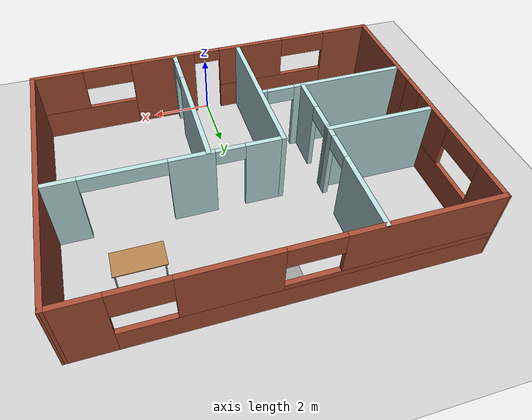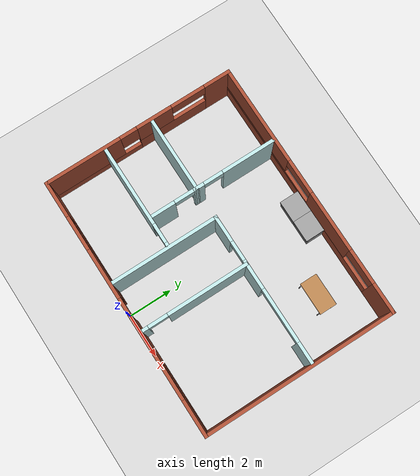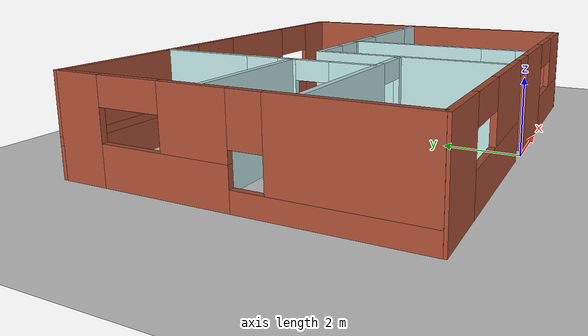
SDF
<sdf version="1.6">
 <world name="default">
  <model name="ground_plane">
   <static>1</static>
   <link name="link">
    <collision name="collision">
     <geometry><plane><normal>0 0 1</normal><size>100 100</size></plane></geometry>
     <surface><friction><ode><mu>100</mu><mu2>50</mu2></ode></friction></surface>
    </collision>
    <visual name="visual">
     <cast_shadows>0</cast_shadows>
     <geometry><plane><normal>0 0 1</normal><size>100 100</size></plane></geometry>
     <material>
      <script><uri>file://media/materials/scripts/gazebo.material</uri><name>Gazebo/Grey</name></script>
     </material>
    </visual>
   </link>
  </model>
  <model name="myhouse">
   <pose>-0.11281 4.46423 0 0 -0 0</pose>
   <link name="Wall_116">
    <pose>1.19186 -1.85654 0 0 0 -1.5708</pose>
    <visual name="Wall_116_Visual_0">
     <pose>-0.621483 0 1.25 0 -0 0</pose>
     <geometry><box><size>3.75703 0.15 2.5</size></box></geometry>
     <material>
      <script><uri>file://media/materials/scripts/gazebo.material</uri><name>Gazebo/Grey</name></script>
      <ambient>0.721569 0.866667 0.866667 1</ambient>
     </material>
     <meta><layer>0</layer></meta>
    </visual>
    <collision name="Wall_116_Collision_0">
     <geometry><box><size>3.75703 0.15 2.5</size></box></geometry>
     <pose>-0.621483 0 1.25 0 -0 0</pose>
    </collision>
    <visual name="Wall_116_Visual_1">
     <pose>2.32852 0 1.25 0 -0 0</pose>
     <geometry><box><size>0.342966 0.15 2.5</size></box></geometry>
     <material>
      <script><uri>file://media/materials/scripts/gazebo.material</uri><name>Gazebo/Grey</name></script>
      <ambient>0.721569 0.866667 0.866667 1</ambient>
     </material>
     <meta><layer>0</layer></meta>
    </visual>
    <collision name="Wall_116_Collision_1">
     <geometry><box><size>0.342966 0.15 2.5</size></box></geometry>
     <pose>2.32852 0 1.25 0 -0 0</pose>
    </collision>
    <visual name="Wall_116_Visual_2">
     <pose>1.70703 0 2.25 0 -0 0</pose>
     <geometry><box><size>0.9 0.15 0.5</size></box></geometry>
     <material>
      <script><uri>file://media/materials/scripts/gazebo.material</uri><name>Gazebo/Grey</name></script>
      <ambient>0.721569 0.866667 0.866667 1</ambient>
     </material>
     <meta><layer>0</layer></meta>
    </visual>
    <collision name="Wall_116_Collision_2">
     <geometry><box><size>0.9 0.15 0.5</size></box></geometry>
     <pose>1.70703 0 2.25 0 -0 0</pose>
    </collision>
   </link>
   <link name="Wall_124">
    <pose>0 -4.37502 0 0 -0 0</pose>
    <visual name="Wall_124_Visual_0">
     <pose>-5.15314 0 1.25 0 -0 0</pose>
     <geometry><box><size>1.69372 0.15 2.5</size></box></geometry>
     <material>
      <script><uri>file://media/materials/scripts/gazebo.material</uri><name>Gazebo/Bricks</name></script>
      <ambient>1 1 1 1</ambient>
     </material>
     <meta><layer>0</layer></meta>
    </visual>
    <collision name="Wall_124_Collision_0">
     <geometry><box><size>1.69372 0.15 2.5</size></box></geometry>
     <pose>-5.15314 0 1.25 0 -0 0</pose>
    </collision>
    <visual name="Wall_124_Visual_1">
     <pose>1.60947 0 1.25 0 -0 0</pose>
     <geometry><box><size>2.19554 0.15 2.5</size></box></geometry>
     <material>
      <script><uri>file://media/materials/scripts/gazebo.material</uri><name>Gazebo/Bricks</name></script>
      <ambient>1 1 1 1</ambient>
     </material>
     <meta><layer>0</layer></meta>
    </visual>
    <collision name="Wall_124_Collision_1">
     <geometry><box><size>2.19554 0.15 2.5</size></box></geometry>
     <pose>1.60947 0 1.25 0 -0 0</pose>
    </collision>
    <visual name="Wall_124_Visual_2">
     <pose>-2.34729 0 0.5 0 -0 0</pose>
     <geometry><box><size>3.91797 0.15 1</size></box></geometry>
     <material>
      <script><uri>file://media/materials/scripts/gazebo.material</uri><name>Gazebo/Bricks</name></script>
      <ambient>1 1 1 1</ambient>
     </material>
     <meta><layer>0</layer></meta>
    </visual>
    <collision name="Wall_124_Collision_2">
     <geometry><box><size>3.91797 0.15 1</size></box></geometry>
     <pose>-2.34729 0 0.5 0 -0 0</pose>
    </collision>
    <visual name="Wall_124_Visual_3">
     <pose>4.35362 0 0.5 0 -0 0</pose>
     <geometry><box><size>3.29276 0.15 1</size></box></geometry>
     <material>
      <script><uri>file://media/materials/scripts/gazebo.material</uri><name>Gazebo/Bricks</name></script>
      <ambient>1 1 1 1</ambient>
     </material>
     <meta><layer>0</layer></meta>
    </visual>
    <collision name="Wall_124_Collision_3">
     <geometry><box><size>3.29276 0.15 1</size></box></geometry>
     <pose>4.35362 0 0.5 0 -0 0</pose>
    </collision>
    <visual name="Wall_124_Visual_4">
     <pose>-1.54729 0 1.75 0 -0 0</pose>
     <geometry><box><size>2.31797 0.15 1.5</size></box></geometry>
     <material>
      <script><uri>file://media/materials/scripts/gazebo.material</uri><name>Gazebo/Bricks</name></script>
      <ambient>1 1 1 1</ambient>
     </material>
     <meta><layer>0</layer></meta>
    </visual>
    <collision name="Wall_124_Collision_4">
     <geometry><box><size>2.31797 0.15 1.5</size></box></geometry>
     <pose>-1.54729 0 1.75 0 -0 0</pose>
    </collision>
    <visual name="Wall_124_Visual_5">
     <pose>-1.54729 0 1.75 0 -0 0</pose>
     <geometry><box><size>2.31797 0.15 1.5</size></box></geometry>
     <material>
      <script><uri>file://media/materials/scripts/gazebo.material</uri><name>Gazebo/Bricks</name></script>
      <ambient>1 1 1 1</ambient>
     </material>
     <meta><layer>0</layer></meta>
    </visual>
    <collision name="Wall_124_Collision_5">
     <geometry><box><size>2.31797 0.15 1.5</size></box></geometry>
     <pose>-1.54729 0 1.75 0 -0 0</pose>
    </collision>
    <visual name="Wall_124_Visual_6">
     <pose>5.15362 0 1.75 0 -0 0</pose>
     <geometry><box><size>1.69276 0.15 1.5</size></box></geometry>
     <material>
      <script><uri>file://media/materials/scripts/gazebo.material</uri><name>Gazebo/Bricks</name></script>
      <ambient>1 1 1 1</ambient>
     </material>
     <meta><layer>0</layer></meta>
    </visual>
    <collision name="Wall_124_Collision_6">
     <geometry><box><size>1.69276 0.15 1.5</size></box></geometry>
     <pose>5.15362 0 1.75 0 -0 0</pose>
    </collision>
    <visual name="Wall_124_Visual_7">
     <pose>-3.50628 0 2.15 0 -0 0</pose>
     <geometry><box><size>1.6 0.15 0.7</size></box></geometry>
     <material>
      <script><uri>file://media/materials/scripts/gazebo.material</uri><name>Gazebo/Bricks</name></script>
      <ambient>1 1 1 1</ambient>
     </material>
     <meta><layer>0</layer></meta>
    </visual>
    <collision name="Wall_124_Collision_7">
     <geometry><box><size>1.6 0.15 0.7</size></box></geometry>
     <pose>-3.50628 0 2.15 0 -0 0</pose>
    </collision>
    <visual name="Wall_124_Visual_8">
     <pose>3.50724 0 2.15 0 -0 0</pose>
     <geometry><box><size>1.6 0.15 0.7</size></box></geometry>
     <material>
      <script><uri>file://media/materials/scripts/gazebo.material</uri><name>Gazebo/Bricks</name></script>
      <ambient>1 1 1 1</ambient>
     </material>
     <meta><layer>0</layer></meta>
    </visual>
    <collision name="Wall_124_Collision_8">
     <geometry><box><size>1.6 0.15 0.7</size></box></geometry>
     <pose>3.50724 0 2.15 0 -0 0</pose>
    </collision>
    <visual name="Wall_124_Visual_9">
     <pose>0.061697 0 2.3 0 -0 0</pose>
     <geometry><box><size>0.9 0.15 0.4</size></box></geometry>
     <material>
      <script><uri>file://media/materials/scripts/gazebo.material</uri><name>Gazebo/Bricks</name></script>
      <ambient>1 1 1 1</ambient>
     </material>
     <meta><layer>0</layer></meta>
    </visual>
    <collision name="Wall_124_Collision_9">
     <geometry><box><size>0.9 0.15 0.4</size></box></geometry>
     <pose>0.061697 0 2.3 0 -0 0</pose>
    </collision>
    <visual name="Wall_124_Visual_10">
     <pose>0.061697 0 2.3 0 -0 0</pose>
     <geometry><box><size>0.9 0.15 0.4</size></box></geometry>
     <material>
      <script><uri>file://media/materials/scripts/gazebo.material</uri><name>Gazebo/Bricks</name></script>
      <ambient>1 1 1 1</ambient>
     </material>
     <meta><layer>0</layer></meta>
    </visual>
    <collision name="Wall_124_Collision_10">
     <geometry><box><size>0.9 0.15 0.4</size></box></geometry>
     <pose>0.061697 0 2.3 0 -0 0</pose>
    </collision>
   </link>
   <link name="Wall_125">
    <collision name="Wall_125_Collision">
     <geometry><box><size>8.9 0.15 2.5</size></box></geometry>
     <pose>0 0 1.25 0 -0 0</pose>
    </collision>
    <visual name="Wall_125_Visual">
     <pose>0 0 1.25 0 -0 0</pose>
     <geometry><box><size>8.9 0.15 2.5</size></box></geometry>
     <material>
      <script><uri>file://media/materials/scripts/gazebo.material</uri><name>Gazebo/Bricks</name></script>
      <ambient>1 1 1 1</ambient>
     </material>
     <meta><layer>0</layer></meta>
    </visual>
    <pose>5.9275 -2e-05 0 0 -0 1.57022</pose>
   </link>
   <link name="Wall_126">
    <pose>0 4.36848 0 0 0 -3.1405</pose>
    <visual name="Wall_126_Visual_0">
     <pose>-5.28653 0 1.25 0 -0 0</pose>
     <geometry><box><size>1.43694 0.15 2.5</size></box></geometry>
     <material>
      <script><uri>file://media/materials/scripts/gazebo.material</uri><name>Gazebo/Bricks</name></script>
      <ambient>1 1 1 1</ambient>
     </material>
     <meta><layer>0</layer></meta>
    </visual>
    <collision name="Wall_126_Collision_0">
     <geometry><box><size>1.43694 0.15 2.5</size></box></geometry>
     <pose>-5.28653 0 1.25 0 -0 0</pose>
    </collision>
    <visual name="Wall_126_Visual_1">
     <pose>0.718468 0 0.4 0 -0 0</pose>
     <geometry><box><size>10.5731 0.15 0.8</size></box></geometry>
     <material>
      <script><uri>file://media/materials/scripts/gazebo.material</uri><name>Gazebo/Bricks</name></script>
      <ambient>1 1 1 1</ambient>
     </material>
     <meta><layer>0</layer></meta>
    </visual>
    <collision name="Wall_126_Collision_1">
     <geometry><box><size>10.5731 0.15 0.8</size></box></geometry>
     <pose>0.718468 0 0.4 0 -0 0</pose>
    </collision>
    <visual name="Wall_126_Visual_2">
     <pose>-1.57991 0 1.65 0 -0 0</pose>
     <geometry><box><size>2.77631 0.15 1.7</size></box></geometry>
     <material>
      <script><uri>file://media/materials/scripts/gazebo.material</uri><name>Gazebo/Bricks</name></script>
      <ambient>1 1 1 1</ambient>
     </material>
     <meta><layer>0</layer></meta>
    </visual>
    <collision name="Wall_126_Collision_2">
     <geometry><box><size>2.77631 0.15 1.7</size></box></geometry>
     <pose>-1.57991 0 1.65 0 -0 0</pose>
    </collision>
    <visual name="Wall_126_Visual_3">
     <pose>2.90663 0 0.9 0 -0 0</pose>
     <geometry><box><size>6.19676 0.15 0.2</size></box></geometry>
     <material>
      <script><uri>file://media/materials/scripts/gazebo.material</uri><name>Gazebo/Bricks</name></script>
      <ambient>1 1 1 1</ambient>
     </material>
     <meta><layer>0</layer></meta>
    </visual>
    <collision name="Wall_126_Collision_3">
     <geometry><box><size>6.19676 0.15 0.2</size></box></geometry>
     <pose>2.90663 0 0.9 0 -0 0</pose>
    </collision>
    <visual name="Wall_126_Visual_4">
     <pose>3.70662 0 1.75 0 -0 0</pose>
     <geometry><box><size>4.59676 0.15 1.5</size></box></geometry>
     <material>
      <script><uri>file://media/materials/scripts/gazebo.material</uri><name>Gazebo/Bricks</name></script>
      <ambient>1 1 1 1</ambient>
     </material>
     <meta><layer>0</layer></meta>
    </visual>
    <collision name="Wall_126_Collision_4">
     <geometry><box><size>4.59676 0.15 1.5</size></box></geometry>
     <pose>3.70662 0 1.75 0 -0 0</pose>
    </collision>
    <visual name="Wall_126_Visual_5">
     <pose>-3.76807 0 2.05 0 -0 0</pose>
     <geometry><box><size>1.6 0.15 0.9</size></box></geometry>
     <material>
      <script><uri>file://media/materials/scripts/gazebo.material</uri><name>Gazebo/Bricks</name></script>
      <ambient>1 1 1 1</ambient>
     </material>
     <meta><layer>0</layer></meta>
    </visual>
    <collision name="Wall_126_Collision_5">
     <geometry><box><size>1.6 0.15 0.9</size></box></geometry>
     <pose>-3.76807 0 2.05 0 -0 0</pose>
    </collision>
    <visual name="Wall_126_Visual_6">
     <pose>0.608246 0 2.15 0 -0 0</pose>
     <geometry><box><size>1.6 0.15 0.7</size></box></geometry>
     <material>
      <script><uri>file://media/materials/scripts/gazebo.material</uri><name>Gazebo/Bricks</name></script>
      <ambient>1 1 1 1</ambient>
     </material>
     <meta><layer>0</layer></meta>
    </visual>
    <collision name="Wall_126_Collision_6">
     <geometry><box><size>1.6 0.15 0.7</size></box></geometry>
     <pose>0.608246 0 2.15 0 -0 0</pose>
    </collision>
   </link>
   <link name="Wall_127">
    <pose>-5.93 0.02998 0 0 0 -1.5708</pose>
    <visual name="Wall_127_Visual_0">
     <pose>-3.77443 0 1.25 0 -0 0</pose>
     <geometry><box><size>1.26514 0.15 2.5</size></box></geometry>
     <material>
      <script><uri>file://media/materials/scripts/gazebo.material</uri><name>Gazebo/Bricks</name></script>
      <ambient>1 1 1 1</ambient>
     </material>
     <meta><layer>0</layer></meta>
    </visual>
    <collision name="Wall_127_Collision_0">
     <geometry><box><size>1.26514 0.15 2.5</size></box></geometry>
     <pose>-3.77443 0 1.25 0 -0 0</pose>
    </collision>
    <visual name="Wall_127_Visual_1">
     <pose>-1.50767 0 0.5 0 -0 0</pose>
     <geometry><box><size>3.26837 0.15 1</size></box></geometry>
     <material>
      <script><uri>file://media/materials/scripts/gazebo.material</uri><name>Gazebo/Bricks</name></script>
      <ambient>1 1 1 1</ambient>
     </material>
     <meta><layer>0</layer></meta>
    </visual>
    <collision name="Wall_127_Collision_1">
     <geometry><box><size>3.26837 0.15 1</size></box></geometry>
     <pose>-1.50767 0 0.5 0 -0 0</pose>
    </collision>
    <visual name="Wall_127_Visual_2">
     <pose>2.26676 0 0.25 0 -0 0</pose>
     <geometry><box><size>4.28049 0.15 0.5</size></box></geometry>
     <material>
      <script><uri>file://media/materials/scripts/gazebo.material</uri><name>Gazebo/Bricks</name></script>
      <ambient>1 1 1 1</ambient>
     </material>
     <meta><layer>0</layer></meta>
    </visual>
    <collision name="Wall_127_Collision_2">
     <geometry><box><size>4.28049 0.15 0.5</size></box></geometry>
     <pose>2.26676 0 0.25 0 -0 0</pose>
    </collision>
    <visual name="Wall_127_Visual_3">
     <pose>2.66676 0 1.5 0 -0 0</pose>
     <geometry><box><size>3.48049 0.15 2</size></box></geometry>
     <material>
      <script><uri>file://media/materials/scripts/gazebo.material</uri><name>Gazebo/Bricks</name></script>
      <ambient>1 1 1 1</ambient>
     </material>
     <meta><layer>0</layer></meta>
    </visual>
    <collision name="Wall_127_Collision_3">
     <geometry><box><size>3.48049 0.15 2</size></box></geometry>
     <pose>2.66676 0 1.5 0 -0 0</pose>
    </collision>
    <visual name="Wall_127_Visual_4">
     <pose>-0.707673 0 1.75 0 -0 0</pose>
     <geometry><box><size>1.66837 0.15 1.5</size></box></geometry>
     <material>
      <script><uri>file://media/materials/scripts/gazebo.material</uri><name>Gazebo/Bricks</name></script>
      <ambient>1 1 1 1</ambient>
     </material>
     <meta><layer>0</layer></meta>
    </visual>
    <collision name="Wall_127_Collision_4">
     <geometry><box><size>1.66837 0.15 1.5</size></box></geometry>
     <pose>-0.707673 0 1.75 0 -0 0</pose>
    </collision>
    <visual name="Wall_127_Visual_5">
     <pose>0.526513 0 1.9 0 -0 0</pose>
     <geometry><box><size>0.8 0.15 1.2</size></box></geometry>
     <material>
      <script><uri>file://media/materials/scripts/gazebo.material</uri><name>Gazebo/Bricks</name></script>
      <ambient>1 1 1 1</ambient>
     </material>
     <meta><layer>0</layer></meta>
    </visual>
    <collision name="Wall_127_Collision_5">
     <geometry><box><size>0.8 0.15 1.2</size></box></geometry>
     <pose>0.526513 0 1.9 0 -0 0</pose>
    </collision>
    <visual name="Wall_127_Visual_6">
     <pose>-2.34186 0 2.15 0 -0 0</pose>
     <geometry><box><size>1.6 0.15 0.7</size></box></geometry>
     <material>
      <script><uri>file://media/materials/scripts/gazebo.material</uri><name>Gazebo/Bricks</name></script>
      <ambient>1 1 1 1</ambient>
     </material>
     <meta><layer>0</layer></meta>
    </visual>
    <collision name="Wall_127_Collision_6">
     <geometry><box><size>1.6 0.15 0.7</size></box></geometry>
     <pose>-2.34186 0 2.15 0 -0 0</pose>
    </collision>
   </link>
   <link name="Wall_129">
    <collision name="Wall_129_Collision">
     <geometry><box><size>5 0.15 2.5</size></box></geometry>
     <pose>0 0 1.25 0 -0 0</pose>
    </collision>
    <visual name="Wall_129_Visual">
     <pose>0 0 1.25 0 -0 0</pose>
     <geometry><box><size>5 0.15 2.5</size></box></geometry>
     <material>
      <script><uri>file://media/materials/scripts/gazebo.material</uri><name>Gazebo/Grey</name></script>
      <ambient>0.721569 0.866667 0.866667 1</ambient>
     </material>
     <meta><layer>0</layer></meta>
    </visual>
    <pose>-1.05639 -1.82996 0 0 -0 1.5708</pose>
   </link>
   <link name="Wall_139">
    <pose>2.37537 0.594546 0 0 -0 0</pose>
    <visual name="Wall_139_Visual_0">
     <pose>-2.88296 0 1.25 0 -0 0</pose>
     <geometry><box><size>1.23409 0.15 2.5</size></box></geometry>
     <material>
      <script><uri>file://media/materials/scripts/gazebo.material</uri><name>Gazebo/Grey</name></script>
      <ambient>0.721569 0.866667 0.866667 1</ambient>
     </material>
     <meta><layer>0</layer></meta>
    </visual>
    <collision name="Wall_139_Collision_0">
     <geometry><box><size>1.23409 0.15 2.5</size></box></geometry>
     <pose>-2.88296 0 1.25 0 -0 0</pose>
    </collision>
    <visual name="Wall_139_Visual_1">
     <pose>-0.682749 0 1.25 0 -0 0</pose>
     <geometry><box><size>1.36633 0.15 2.5</size></box></geometry>
     <material>
      <script><uri>file://media/materials/scripts/gazebo.material</uri><name>Gazebo/Grey</name></script>
      <ambient>0.721569 0.866667 0.866667 1</ambient>
     </material>
     <meta><layer>0</layer></meta>
    </visual>
    <collision name="Wall_139_Collision_1">
     <geometry><box><size>1.36633 0.15 2.5</size></box></geometry>
     <pose>-0.682749 0 1.25 0 -0 0</pose>
    </collision>
    <visual name="Wall_139_Visual_2">
     <pose>3.00021 0 1.25 0 -0 0</pose>
     <geometry><box><size>0.999584 0.15 2.5</size></box></geometry>
     <material>
      <script><uri>file://media/materials/scripts/gazebo.material</uri><name>Gazebo/Grey</name></script>
      <ambient>0.721569 0.866667 0.866667 1</ambient>
     </material>
     <meta><layer>0</layer></meta>
    </visual>
    <collision name="Wall_139_Collision_2">
     <geometry><box><size>0.999584 0.15 2.5</size></box></geometry>
     <pose>3.00021 0 1.25 0 -0 0</pose>
    </collision>
    <visual name="Wall_139_Visual_3">
     <pose>-1.81591 0 2.25 0 -0 0</pose>
     <geometry><box><size>0.9 0.15 0.5</size></box></geometry>
     <material>
      <script><uri>file://media/materials/scripts/gazebo.material</uri><name>Gazebo/Grey</name></script>
      <ambient>0.721569 0.866667 0.866667 1</ambient>
     </material>
     <meta><layer>0</layer></meta>
    </visual>
    <collision name="Wall_139_Collision_3">
     <geometry><box><size>0.9 0.15 0.5</size></box></geometry>
     <pose>-1.81591 0 2.25 0 -0 0</pose>
    </collision>
    <visual name="Wall_139_Visual_4">
     <pose>1.25042 0 2.25 0 -0 0</pose>
     <geometry><box><size>2.5 0.15 0.5</size></box></geometry>
     <material>
      <script><uri>file://media/materials/scripts/gazebo.material</uri><name>Gazebo/Grey</name></script>
      <ambient>0.721569 0.866667 0.866667 1</ambient>
     </material>
     <meta><layer>0</layer></meta>
    </visual>
    <collision name="Wall_139_Collision_4">
     <geometry><box><size>2.5 0.15 0.5</size></box></geometry>
     <pose>1.25042 0 2.25 0 -0 0</pose>
    </collision>
   </link>
   <link name="Wall_154">
    <pose>-3.48298 -1.6348 0 0 -0 0</pose>
    <visual name="Wall_154_Visual_0">
     <pose>-0.535862 0 1.25 0 -0 0</pose>
     <geometry><box><size>3.67828 0.15 2.5</size></box></geometry>
     <material>
      <script><uri>file://media/materials/scripts/gazebo.material</uri><name>Gazebo/Grey</name></script>
      <ambient>0.721569 0.866667 0.866667 1</ambient>
     </material>
     <meta><layer>0</layer></meta>
    </visual>
    <collision name="Wall_154_Collision_0">
     <geometry><box><size>3.67828 0.15 2.5</size></box></geometry>
     <pose>-0.535862 0 1.25 0 -0 0</pose>
    </collision>
    <visual name="Wall_154_Visual_1">
     <pose>2.28914 0 1.25 0 -0 0</pose>
     <geometry><box><size>0.171723 0.15 2.5</size></box></geometry>
     <material>
      <script><uri>file://media/materials/scripts/gazebo.material</uri><name>Gazebo/Grey</name></script>
      <ambient>0.721569 0.866667 0.866667 1</ambient>
     </material>
     <meta><layer>0</layer></meta>
    </visual>
    <collision name="Wall_154_Collision_1">
     <geometry><box><size>0.171723 0.15 2.5</size></box></geometry>
     <pose>2.28914 0 1.25 0 -0 0</pose>
    </collision>
    <visual name="Wall_154_Visual_2">
     <pose>1.75328 0 2.25 0 -0 0</pose>
     <geometry><box><size>0.9 0.15 0.5</size></box></geometry>
     <material>
      <script><uri>file://media/materials/scripts/gazebo.material</uri><name>Gazebo/Grey</name></script>
      <ambient>0.721569 0.866667 0.866667 1</ambient>
     </material>
     <meta><layer>0</layer></meta>
    </visual>
    <collision name="Wall_154_Collision_2">
     <geometry><box><size>0.9 0.15 0.5</size></box></geometry>
     <pose>1.75328 0 2.25 0 -0 0</pose>
    </collision>
   </link>
   <link name="Wall_157">
    <collision name="Wall_157_Collision">
     <geometry><box><size>3.48493 0.15 2.5</size></box></geometry>
     <pose>0 0 1.25 0 -0 0</pose>
    </collision>
    <visual name="Wall_157_Visual">
     <pose>0 0 1.25 0 -0 0</pose>
     <geometry><box><size>3.48493 0.15 2.5</size></box></geometry>
     <material>
      <script><uri>file://media/materials/scripts/gazebo.material</uri><name>Gazebo/Grey</name></script>
      <ambient>0.721569 0.866667 0.866667 1</ambient>
     </material>
     <meta><layer>0</layer></meta>
    </visual>
    <pose>-4.14746 0.597189 0 0 -0 3.14147</pose>
   </link>
   <link name="Wall_160">
    <pose>-2.48 2.47198 0 0 -0 1.5708</pose>
    <visual name="Wall_160_Visual_0">
     <pose>-1.74137 0 1.25 0 -0 0</pose>
     <geometry><box><size>0.417261 0.15 2.5</size></box></geometry>
     <material>
      <script><uri>file://media/materials/scripts/gazebo.material</uri><name>Gazebo/Grey</name></script>
      <ambient>0.721569 0.866667 0.866667 1</ambient>
     </material>
     <meta><layer>0</layer></meta>
    </visual>
    <collision name="Wall_160_Collision_0">
     <geometry><box><size>0.417261 0.15 2.5</size></box></geometry>
     <pose>-1.74137 0 1.25 0 -0 0</pose>
    </collision>
    <visual name="Wall_160_Visual_1">
     <pose>0.65863 0 1.25 0 -0 0</pose>
     <geometry><box><size>2.58274 0.15 2.5</size></box></geometry>
     <material>
      <script><uri>file://media/materials/scripts/gazebo.material</uri><name>Gazebo/Grey</name></script>
      <ambient>0.721569 0.866667 0.866667 1</ambient>
     </material>
     <meta><layer>0</layer></meta>
    </visual>
    <collision name="Wall_160_Collision_1">
     <geometry><box><size>2.58274 0.15 2.5</size></box></geometry>
     <pose>0.65863 0 1.25 0 -0 0</pose>
    </collision>
    <visual name="Wall_160_Visual_2">
     <pose>-1.08274 0 2.25 0 -0 0</pose>
     <geometry><box><size>0.9 0.15 0.5</size></box></geometry>
     <material>
      <script><uri>file://media/materials/scripts/gazebo.material</uri><name>Gazebo/Grey</name></script>
      <ambient>0.721569 0.866667 0.866667 1</ambient>
     </material>
     <meta><layer>0</layer></meta>
    </visual>
    <collision name="Wall_160_Collision_2">
     <geometry><box><size>0.9 0.15 0.5</size></box></geometry>
     <pose>-1.08274 0 2.25 0 -0 0</pose>
    </collision>
   </link>
   <link name="Wall_162">
    <pose>-2.48 -0.47802 0 0 0 -1.5708</pose>
    <visual name="Wall_162_Visual_0">
     <pose>-1.03704 0 1.25 0 -0 0</pose>
     <geometry><box><size>0.225923 0.15 2.5</size></box></geometry>
     <material>
      <script><uri>file://media/materials/scripts/gazebo.material</uri><name>Gazebo/Grey</name></script>
      <ambient>0.721569 0.866667 0.866667 1</ambient>
     </material>
     <meta><layer>0</layer></meta>
    </visual>
    <collision name="Wall_162_Collision_0">
     <geometry><box><size>0.225923 0.15 2.5</size></box></geometry>
     <pose>-1.03704 0 1.25 0 -0 0</pose>
    </collision>
    <visual name="Wall_162_Visual_1">
     <pose>0.562961 0 1.25 0 -0 0</pose>
     <geometry><box><size>1.17408 0.15 2.5</size></box></geometry>
     <material>
      <script><uri>file://media/materials/scripts/gazebo.material</uri><name>Gazebo/Grey</name></script>
      <ambient>0.721569 0.866667 0.866667 1</ambient>
     </material>
     <meta><layer>0</layer></meta>
    </visual>
    <collision name="Wall_162_Collision_1">
     <geometry><box><size>1.17408 0.15 2.5</size></box></geometry>
     <pose>0.562961 0 1.25 0 -0 0</pose>
    </collision>
    <visual name="Wall_162_Visual_2">
     <pose>-0.474077 0 2.25 0 -0 0</pose>
     <geometry><box><size>0.9 0.15 0.5</size></box></geometry>
     <material>
      <script><uri>file://media/materials/scripts/gazebo.material</uri><name>Gazebo/Grey</name></script>
      <ambient>0.721569 0.866667 0.866667 1</ambient>
     </material>
     <meta><layer>0</layer></meta>
    </visual>
    <collision name="Wall_162_Collision_2">
     <geometry><box><size>0.9 0.15 0.5</size></box></geometry>
     <pose>-0.474077 0 2.25 0 -0 0</pose>
    </collision>
   </link>
   <static>1</static>
  </model>
  <model name="countertop_clone_clone">
   <link name="link_0">
    <pose>-0.025 0 -0.225 0 -0 0</pose>
    <inertial>
     <mass>1</mass>
     <inertia>
      <ixx>0.166667</ixx>
      <ixy>0</ixy>
      <ixz>0</ixz>
      <iyy>0.166667</iyy>
      <iyz>0</iyz>
      <izz>0.166667</izz>
     </inertia>
    </inertial>
    <visual name="visual">
     <geometry><box><size>0.8 1 0.8</size></box></geometry>
     <material>
      <lighting>1</lighting>
      <script><uri>file://media/materials/scripts/gazebo.material</uri><name>Gazebo/Grey</name></script>
      <shader type="pixel"><normal_map>__default__</normal_map></shader>
      <ambient>1 1 1 1</ambient>
      <diffuse>0.9 0.9 0.9 1</diffuse>
      <specular>0.01 0.01 0.01 1</specular>
      <emissive>0 0 0 1</emissive>
     </material>
    </visual>
    <collision name="collision">
     <geometry><box><size>0.8 1 0.8</size></box></geometry>
     <surface>
      <friction>
       <ode><mu>1</mu><mu2>1</mu2><fdir1>0 0 0</fdir1><slip1>0</slip1><slip2>0</slip2></ode>
       <torsional>
        <coefficient>1</coefficient>
        <patch_radius>0</patch_radius>
        <surface_radius>0</surface_radius>
        <use_patch_radius>1</use_patch_radius>
        <ode><slip>0</slip></ode>
       </torsional>
      </friction>
      <bounce><restitution_coefficient>0</restitution_coefficient><threshold>1e+06</threshold></bounce>
      <contact>
       <collide_without_contact>0</collide_without_contact>
       <collide_without_contact_bitmask>1</collide_without_contact_bitmask>
       <collide_bitmask>1</collide_bitmask>
       <ode>
        <soft_cfm>0</soft_cfm>
        <soft_erp>0.2</soft_erp>
        <kp>1e+13</kp>
        <kd>1</kd>
        <max_vel>0.01</max_vel>
        <min_depth>0</min_depth>
       </ode>
       <bullet>
        <split_impulse>1</split_impulse>
        <split_impulse_penetration_threshold>-0.01</split_impulse_penetration_threshold>
        <soft_cfm>0</soft_cfm>
        <soft_erp>0.2</soft_erp>
        <kp>1e+13</kp>
        <kd>1</kd>
       </bullet>
      </contact>
     </surface>
    </collision>
   </link>
   <link name="link_1">
    <pose>0.025 0 0.225 0 -0 0</pose>
    <inertial>
     <mass>1</mass>
     <inertia>
      <ixx>0.166667</ixx>
      <ixy>0</ixy>
      <ixz>0</ixz>
      <iyy>0.166667</iyy>
      <iyz>0</iyz>
      <izz>0.166667</izz>
     </inertia>
    </inertial>
    <visual name="visual">
     <geometry><box><size>0.9 1 0.1</size></box></geometry>
     <material>
      <lighting>1</lighting>
      <script><uri>file://media/materials/scripts/gazebo.material</uri><name>Gazebo/Grey</name></script>
      <shader type="pixel"><normal_map>__default__</normal_map></shader>
      <ambient>0.1 0.1 0.1 1</ambient>
      <diffuse>0.1 0.1 0.1 1</diffuse>
      <specular>0.01 0.01 0.01 1</specular>
      <emissive>0 0 0 1</emissive>
     </material>
    </visual>
    <collision name="collision">
     <geometry><box><size>0.9 1 0.1</size></box></geometry>
     <surface>
      <friction>
       <ode><mu>1</mu><mu2>1</mu2><fdir1>0 0 0</fdir1><slip1>0</slip1><slip2>0</slip2></ode>
       <torsional>
        <coefficient>1</coefficient>
        <patch_radius>0</patch_radius>
        <surface_radius>0</surface_radius>
        <use_patch_radius>1</use_patch_radius>
        <ode><slip>0</slip></ode>
       </torsional>
      </friction>
      <bounce><restitution_coefficient>0</restitution_coefficient><threshold>1e+06</threshold></bounce>
      <contact>
       <collide_without_contact>0</collide_without_contact>
       <collide_without_contact_bitmask>1</collide_without_contact_bitmask>
       <collide_bitmask>1</collide_bitmask>
       <ode>
        <soft_cfm>0</soft_cfm>
        <soft_erp>0.2</soft_erp>
        <kp>1e+13</kp>
        <kd>1</kd>
        <max_vel>0.01</max_vel>
        <min_depth>0</min_depth>
       </ode>
       <bullet>
        <split_impulse>1</split_impulse>
        <split_impulse_penetration_threshold>-0.01</split_impulse_penetration_threshold>
        <soft_cfm>0</soft_cfm>
        <soft_erp>0.2</soft_erp>
        <kp>1e+13</kp>
        <kd>1</kd>
       </bullet>
      </contact>
     </surface>
    </collision>
   </link>
   <joint name="link_0_JOINT_0" type="revolute">
    <parent>link_0</parent>
    <child>link_1</child>
    <axis>
     <xyz>1 0 0</xyz>
     <use_parent_model_frame>0</use_parent_model_frame>
     <limit>
      <lower>-1.79769e+308</lower>
      <upper>1.79769e+308</upper>
      <effort>-1</effort>
      <velocity>-1</velocity>
     </limit>
     <dynamics>
      <spring_reference>0</spring_reference>
      <spring_stiffness>0</spring_stiffness>
      <damping>0</damping>
      <friction>0</friction>
     </dynamics>
    </axis>
    <physics>
     <ode><limit><cfm>0</cfm><erp>0.2</erp></limit><suspension><cfm>0</cfm><erp>0.2</erp></suspension></ode>
    </physics>
   </joint>
   <static>1</static>
   <pose>-0.024827 8.33388 0.618131 0 0 -1.5707</pose>
  </model>
  <model name="countertop_clone_clone_clone">
   <link name="link_0">
    <pose>-0.025 0 -0.225 0 -0 0</pose>
    <inertial>
     <mass>1</mass>
     <inertia>
      <ixx>0.166667</ixx>
      <ixy>0</ixy>
      <ixz>0</ixz>
      <iyy>0.166667</iyy>
      <iyz>0</iyz>
      <izz>0.166667</izz>
     </inertia>
    </inertial>
    <visual name="visual">
     <geometry><box><size>0.8 1 0.8</size></box></geometry>
     <material>
      <lighting>1</lighting>
      <script><uri>file://media/materials/scripts/gazebo.material</uri><name>Gazebo/Grey</name></script>
      <shader type="pixel"><normal_map>__default__</normal_map></shader>
      <ambient>1 1 1 1</ambient>
      <diffuse>0.9 0.9 0.9 1</diffuse>
      <specular>0.01 0.01 0.01 1</specular>
      <emissive>0 0 0 1</emissive>
     </material>
    </visual>
    <collision name="collision">
     <geometry><box><size>0.8 1 0.8</size></box></geometry>
     <surface>
      <friction>
       <ode><mu>1</mu><mu2>1</mu2><fdir1>0 0 0</fdir1><slip1>0</slip1><slip2>0</slip2></ode>
       <torsional>
        <coefficient>1</coefficient>
        <patch_radius>0</patch_radius>
        <surface_radius>0</surface_radius>
        <use_patch_radius>1</use_patch_radius>
        <ode><slip>0</slip></ode>
       </torsional>
      </friction>
      <bounce><restitution_coefficient>0</restitution_coefficient><threshold>1e+06</threshold></bounce>
      <contact>
       <collide_without_contact>0</collide_without_contact>
       <collide_without_contact_bitmask>1</collide_without_contact_bitmask>
       <collide_bitmask>1</collide_bitmask>
       <ode>
        <soft_cfm>0</soft_cfm>
        <soft_erp>0.2</soft_erp>
        <kp>1e+13</kp>
        <kd>1</kd>
        <max_vel>0.01</max_vel>
        <min_depth>0</min_depth>
       </ode>
       <bullet>
        <split_impulse>1</split_impulse>
        <split_impulse_penetration_threshold>-0.01</split_impulse_penetration_threshold>
        <soft_cfm>0</soft_cfm>
        <soft_erp>0.2</soft_erp>
        <kp>1e+13</kp>
        <kd>1</kd>
       </bullet>
      </contact>
     </surface>
    </collision>
   </link>
   <link name="link_1">
    <pose>0.025 0 0.225 0 -0 0</pose>
    <inertial>
     <mass>1</mass>
     <inertia>
      <ixx>0.166667</ixx>
      <ixy>0</ixy>
      <ixz>0</ixz>
      <iyy>0.166667</iyy>
      <iyz>0</iyz>
      <izz>0.166667</izz>
     </inertia>
    </inertial>
    <visual name="visual">
     <geometry><box><size>0.9 1 0.1</size></box></geometry>
     <material>
      <lighting>1</lighting>
      <script><uri>file://media/materials/scripts/gazebo.material</uri><name>Gazebo/Grey</name></script>
      <shader type="pixel"><normal_map>__default__</normal_map></shader>
      <ambient>0.1 0.1 0.1 1</ambient>
      <diffuse>0.1 0.1 0.1 1</diffuse>
      <specular>0.01 0.01 0.01 1</specular>
      <emissive>0 0 0 1</emissive>
     </material>
    </visual>
    <collision name="collision">
     <geometry><box><size>0.9 1 0.1</size></box></geometry>
     <surface>
      <friction>
       <ode><mu>1</mu><mu2>1</mu2><fdir1>0 0 0</fdir1><slip1>0</slip1><slip2>0</slip2></ode>
       <torsional>
        <coefficient>1</coefficient>
        <patch_radius>0</patch_radius>
        <surface_radius>0</surface_radius>
        <use_patch_radius>1</use_patch_radius>
        <ode><slip>0</slip></ode>
       </torsional>
      </friction>
      <bounce><restitution_coefficient>0</restitution_coefficient><threshold>1e+06</threshold></bounce>
      <contact>
       <collide_without_contact>0</collide_without_contact>
       <collide_without_contact_bitmask>1</collide_without_contact_bitmask>
       <collide_bitmask>1</collide_bitmask>
       <ode>
        <soft_cfm>0</soft_cfm>
        <soft_erp>0.2</soft_erp>
        <kp>1e+13</kp>
        <kd>1</kd>
        <max_vel>0.01</max_vel>
        <min_depth>0</min_depth>
       </ode>
       <bullet>
        <split_impulse>1</split_impulse>
        <split_impulse_penetration_threshold>-0.01</split_impulse_penetration_threshold>
        <soft_cfm>0</soft_cfm>
        <soft_erp>0.2</soft_erp>
        <kp>1e+13</kp>
        <kd>1</kd>
       </bullet>
      </contact>
     </surface>
    </collision>
   </link>
   <joint name="link_0_JOINT_0" type="revolute">
    <parent>link_0</parent>
    <child>link_1</child>
    <axis>
     <xyz>1 0 0</xyz>
     <use_parent_model_frame>0</use_parent_model_frame>
     <limit>
      <lower>-1.79769e+308</lower>
      <upper>1.79769e+308</upper>
      <effort>-1</effort>
      <velocity>-1</velocity>
     </limit>
     <dynamics>
      <spring_reference>0</spring_reference>
      <spring_stiffness>0</spring_stiffness>
      <damping>0</damping>
      <friction>0</friction>
     </dynamics>
    </axis>
    <physics>
     <ode><limit><cfm>0</cfm><erp>0.2</erp></limit><suspension><cfm>0</cfm><erp>0.2</erp></suspension></ode>
    </physics>
   </joint>
   <static>1</static>
   <pose>0.972079 8.33407 0.618131 0 0 -1.5707</pose>
  </model>
  <model name="table">
   <static>1</static>
   <link name="link">
    <collision name="surface">
     <pose>0 0 1 0 -0 0</pose>
     <geometry><box><size>1.5 0.8 0.03</size></box></geometry>
     <surface><friction><ode><mu>0.6</mu><mu2>0.6</mu2></ode></friction></surface>
    </collision>
    <visual name="visual1">
     <pose>0 0 1 0 -0 0</pose>
     <geometry><box><size>1.5 0.8 0.03</size></box></geometry>
     <material>
      <script><uri>file://media/materials/scripts/gazebo.material</uri><name>Gazebo/Wood</name></script>
     </material>
    </visual>
    <collision name="front_left_leg">
     <pose>0.68 0.38 0.5 0 -0 0</pose>
     <geometry><cylinder><radius>0.02</radius><length>1</length></cylinder></geometry>
    </collision>
    <visual name="front_left_leg">
     <pose>0.68 0.38 0.5 0 -0 0</pose>
     <geometry><cylinder><radius>0.02</radius><length>1</length></cylinder></geometry>
     <material>
      <script><uri>file://media/materials/scripts/gazebo.material</uri><name>Gazebo/Grey</name></script>
     </material>
    </visual>
    <collision name="front_right_leg">
     <pose>0.68 -0.38 0.5 0 -0 0</pose>
     <geometry><cylinder><radius>0.02</radius><length>1</length></cylinder></geometry>
    </collision>
    <visual name="front_right_leg">
     <pose>0.68 -0.38 0.5 0 -0 0</pose>
     <geometry><cylinder><radius>0.02</radius><length>1</length></cylinder></geometry>
     <material>
      <script><uri>file://media/materials/scripts/gazebo.material</uri><name>Gazebo/Grey</name></script>
     </material>
    </visual>
    <collision name="back_right_leg">
     <pose>-0.68 -0.38 0.5 0 -0 0</pose>
     <geometry><cylinder><radius>0.02</radius><length>1</length></cylinder></geometry>
    </collision>
    <visual name="back_right_leg">
     <pose>-0.68 -0.38 0.5 0 -0 0</pose>
     <geometry><cylinder><radius>0.02</radius><length>1</length></cylinder></geometry>
     <material>
      <script><uri>file://media/materials/scripts/gazebo.material</uri><name>Gazebo/Grey</name></script>
     </material>
    </visual>
    <collision name="back_left_leg">
     <pose>-0.68 0.38 0.5 0 -0 0</pose>
     <geometry><cylinder><radius>0.02</radius><length>1</length></cylinder></geometry>
    </collision>
    <visual name="back_left_leg">
     <pose>-0.68 0.38 0.5 0 -0 0</pose>
     <geometry><cylinder><radius>0.02</radius><length>1</length></cylinder></geometry>
     <material>
      <script><uri>file://media/materials/scripts/gazebo.material</uri><name>Gazebo/Grey</name></script>
     </material>
    </visual>
   </link>
   <pose>3.57159 7.01496 0 0 -0 0</pose>
  </model>
 </world>
</sdf>
